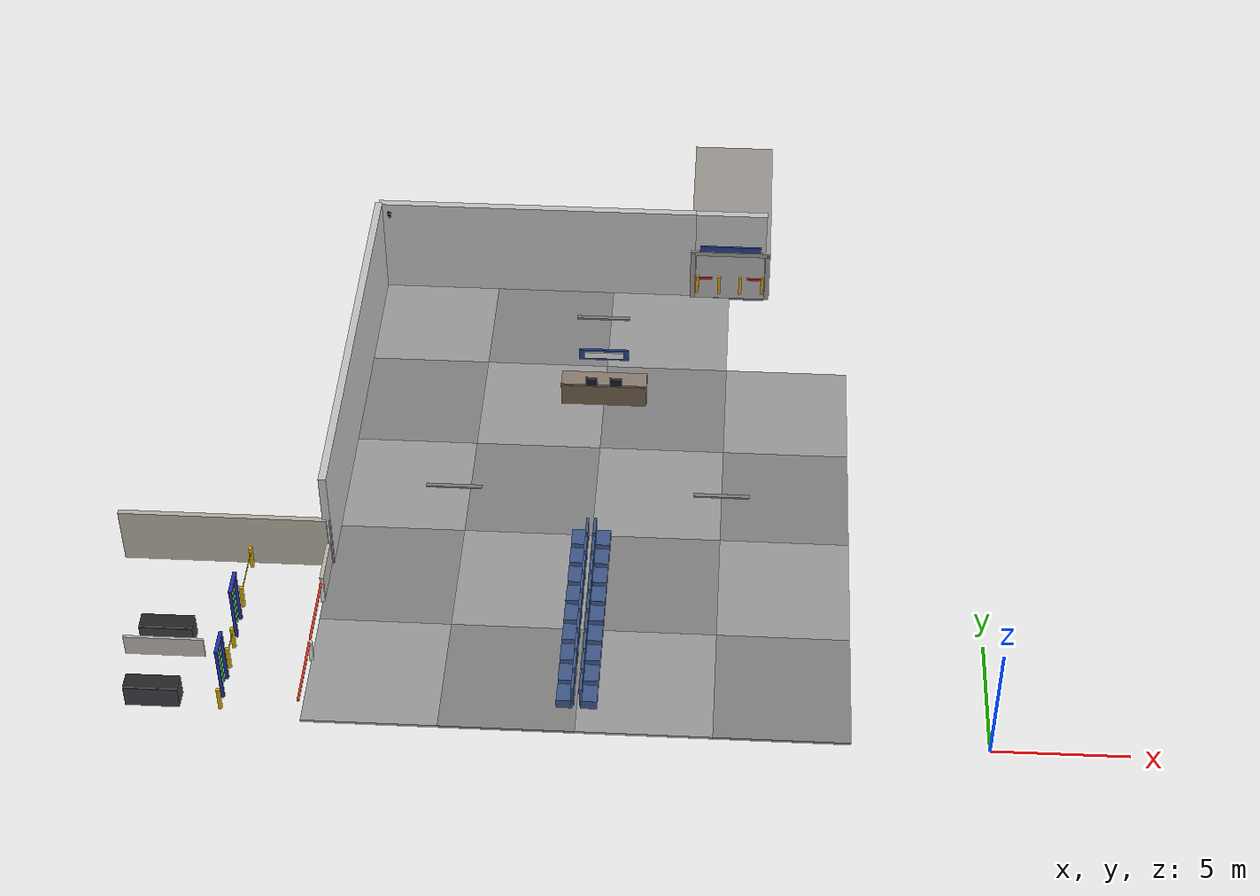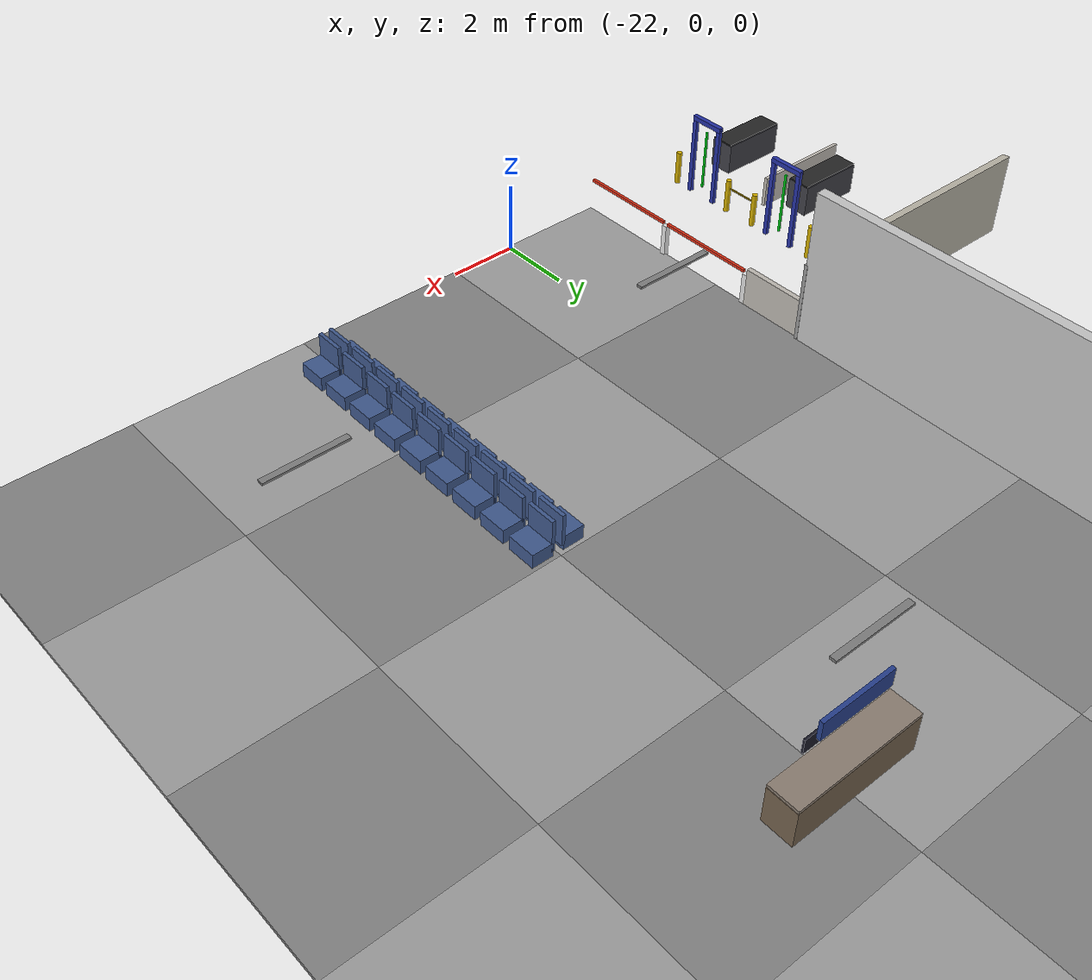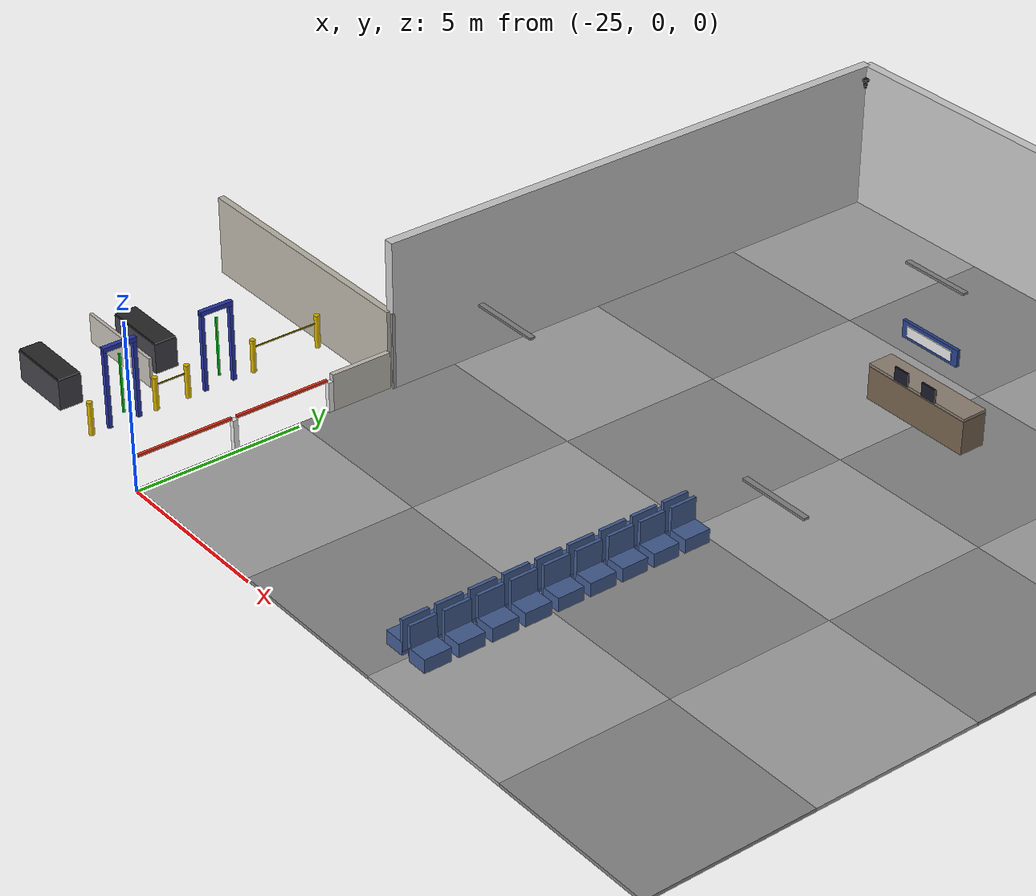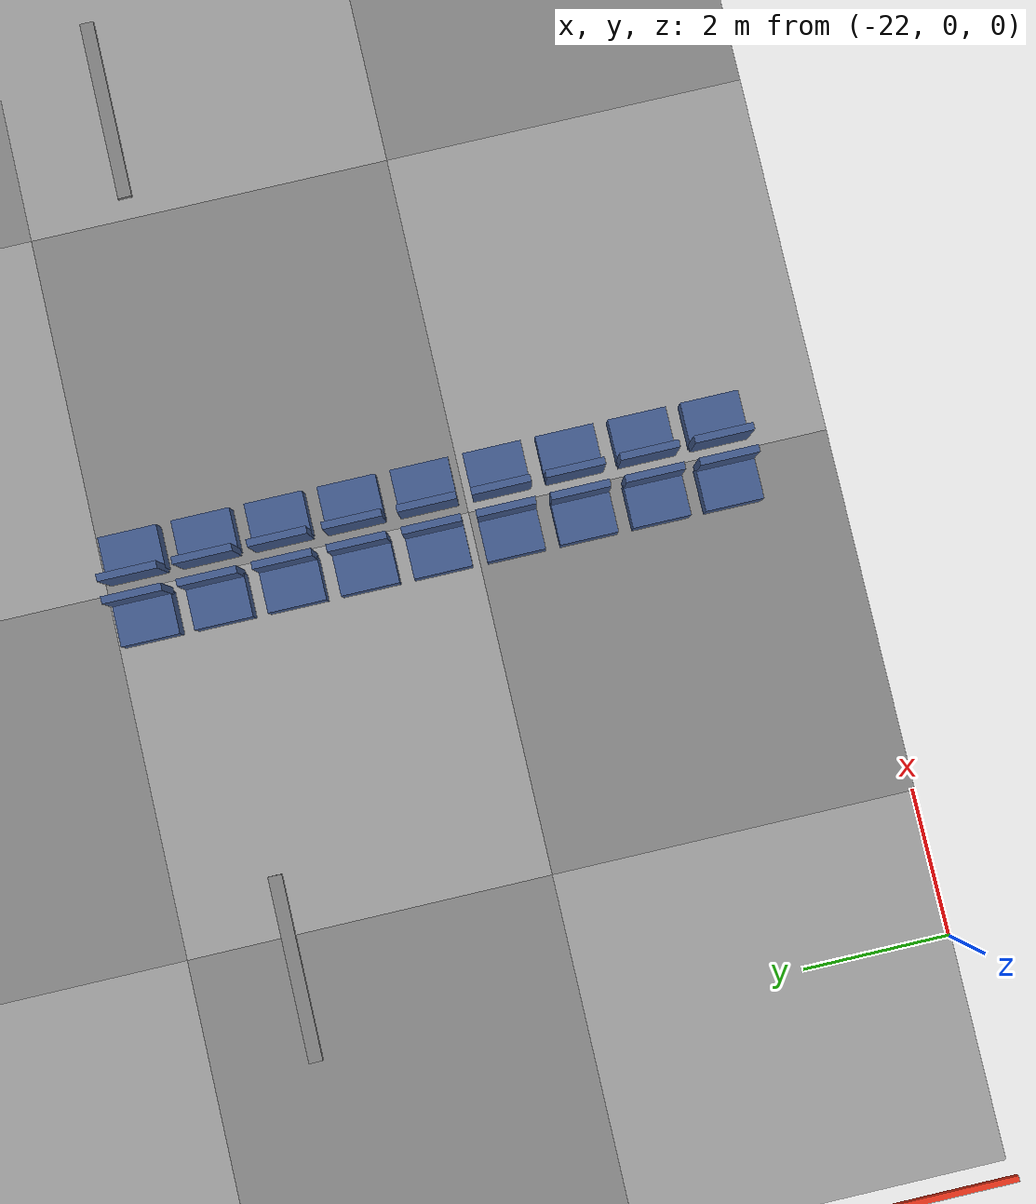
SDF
<sdf version="1.10">
 <world name="my_world">
  <model name="vtile_0_5">
   <static>true</static>
   <pose>-22.5 2.5 0.05 0 0 0</pose>
   <link name="link">
    <visual name="vis">
     <geometry><box><size>5 5 0.1</size></box></geometry>
     <material><ambient>0.62 0.62 0.62 1</ambient><diffuse>0.62 0.62 0.62 1</diffuse></material>
    </visual>
   </link>
  </model>
  <model name="vtile_0_6">
   <static>true</static>
   <pose>-22.5 7.5 0.05 0 0 0</pose>
   <link name="link">
    <visual name="vis">
     <geometry><box><size>5 5 0.1</size></box></geometry>
     <material><ambient>0.52 0.52 0.52 1</ambient><diffuse>0.52 0.52 0.52 1</diffuse></material>
    </visual>
   </link>
  </model>
  <model name="vtile_0_7">
   <static>true</static>
   <pose>-22.5 12.5 0.05 0 0 0</pose>
   <link name="link">
    <visual name="vis">
     <geometry><box><size>5 5 0.1</size></box></geometry>
     <material><ambient>0.62 0.62 0.62 1</ambient><diffuse>0.62 0.62 0.62 1</diffuse></material>
    </visual>
   </link>
  </model>
  <model name="vtile_0_8">
   <static>true</static>
   <pose>-22.5 17.5 0.05 0 0 0</pose>
   <link name="link">
    <visual name="vis">
     <geometry><box><size>5 5 0.1</size></box></geometry>
     <material><ambient>0.52 0.52 0.52 1</ambient><diffuse>0.52 0.52 0.52 1</diffuse></material>
    </visual>
   </link>
  </model>
  <model name="vtile_0_9">
   <static>true</static>
   <pose>-22.5 22.5 0.05 0 0 0</pose>
   <link name="link">
    <visual name="vis">
     <geometry><box><size>5 5 0.1</size></box></geometry>
     <material><ambient>0.62 0.62 0.62 1</ambient><diffuse>0.62 0.62 0.62 1</diffuse></material>
    </visual>
   </link>
  </model>
  <model name="vtile_1_5">
   <static>true</static>
   <pose>-17.5 2.5 0.05 0 0 0</pose>
   <link name="link">
    <visual name="vis">
     <geometry><box><size>5 5 0.1</size></box></geometry>
     <material><ambient>0.52 0.52 0.52 1</ambient><diffuse>0.52 0.52 0.52 1</diffuse></material>
    </visual>
   </link>
  </model>
  <model name="vtile_1_6">
   <static>true</static>
   <pose>-17.5 7.5 0.05 0 0 0</pose>
   <link name="link">
    <visual name="vis">
     <geometry><box><size>5 5 0.1</size></box></geometry>
     <material><ambient>0.62 0.62 0.62 1</ambient><diffuse>0.62 0.62 0.62 1</diffuse></material>
    </visual>
   </link>
  </model>
  <model name="vtile_1_7">
   <static>true</static>
   <pose>-17.5 12.5 0.05 0 0 0</pose>
   <link name="link">
    <visual name="vis">
     <geometry><box><size>5 5 0.1</size></box></geometry>
     <material><ambient>0.52 0.52 0.52 1</ambient><diffuse>0.52 0.52 0.52 1</diffuse></material>
    </visual>
   </link>
  </model>
  <model name="vtile_1_8">
   <static>true</static>
   <pose>-17.5 17.5 0.05 0 0 0</pose>
   <link name="link">
    <visual name="vis">
     <geometry><box><size>5 5 0.1</size></box></geometry>
     <material><ambient>0.62 0.62 0.62 1</ambient><diffuse>0.62 0.62 0.62 1</diffuse></material>
    </visual>
   </link>
  </model>
  <model name="vtile_1_9">
   <static>true</static>
   <pose>-17.5 22.5 0.05 0 0 0</pose>
   <link name="link">
    <visual name="vis">
     <geometry><box><size>5 5 0.1</size></box></geometry>
     <material><ambient>0.52 0.52 0.52 1</ambient><diffuse>0.52 0.52 0.52 1</diffuse></material>
    </visual>
   </link>
  </model>
  <model name="vtile_2_5">
   <static>true</static>
   <pose>-12.5 2.5 0.05 0 0 0</pose>
   <link name="link">
    <visual name="vis">
     <geometry><box><size>5 5 0.1</size></box></geometry>
     <material><ambient>0.62 0.62 0.62 1</ambient><diffuse>0.62 0.62 0.62 1</diffuse></material>
    </visual>
   </link>
  </model>
  <model name="vtile_2_6">
   <static>true</static>
   <pose>-12.5 7.5 0.05 0 0 0</pose>
   <link name="link">
    <visual name="vis">
     <geometry><box><size>5 5 0.1</size></box></geometry>
     <material><ambient>0.52 0.52 0.52 1</ambient><diffuse>0.52 0.52 0.52 1</diffuse></material>
    </visual>
   </link>
  </model>
  <model name="vtile_2_7">
   <static>true</static>
   <pose>-12.5 12.5 0.05 0 0 0</pose>
   <link name="link">
    <visual name="vis">
     <geometry><box><size>5 5 0.1</size></box></geometry>
     <material><ambient>0.62 0.62 0.62 1</ambient><diffuse>0.62 0.62 0.62 1</diffuse></material>
    </visual>
   </link>
  </model>
  <model name="vtile_2_8">
   <static>true</static>
   <pose>-12.5 17.5 0.05 0 0 0</pose>
   <link name="link">
    <visual name="vis">
     <geometry><box><size>5 5 0.1</size></box></geometry>
     <material><ambient>0.52 0.52 0.52 1</ambient><diffuse>0.52 0.52 0.52 1</diffuse></material>
    </visual>
   </link>
  </model>
  <model name="vtile_2_9">
   <static>true</static>
   <pose>-12.5 22.5 0.05 0 0 0</pose>
   <link name="link">
    <visual name="vis">
     <geometry><box><size>5 5 0.1</size></box></geometry>
     <material><ambient>0.62 0.62 0.62 1</ambient><diffuse>0.62 0.62 0.62 1</diffuse></material>
    </visual>
   </link>
  </model>
  <model name="vtile_3_5">
   <static>true</static>
   <pose>-7.5 2.5 0.05 0 0 0</pose>
   <link name="link">
    <visual name="vis">
     <geometry><box><size>5 5 0.1</size></box></geometry>
     <material><ambient>0.52 0.52 0.52 1</ambient><diffuse>0.52 0.52 0.52 1</diffuse></material>
    </visual>
   </link>
  </model>
  <model name="vtile_3_6">
   <static>true</static>
   <pose>-7.5 7.5 0.05 0 0 0</pose>
   <link name="link">
    <visual name="vis">
     <geometry><box><size>5 5 0.1</size></box></geometry>
     <material><ambient>0.62 0.62 0.62 1</ambient><diffuse>0.62 0.62 0.62 1</diffuse></material>
    </visual>
   </link>
  </model>
  <model name="vtile_3_7">
   <static>true</static>
   <pose>-7.5 12.5 0.05 0 0 0</pose>
   <link name="link">
    <visual name="vis">
     <geometry><box><size>5 5 0.1</size></box></geometry>
     <material><ambient>0.52 0.52 0.52 1</ambient><diffuse>0.52 0.52 0.52 1</diffuse></material>
    </visual>
   </link>
  </model>
  <model name="vtile_3_8">
   <static>true</static>
   <pose>-7.5 17.5 0.05 0 0 0</pose>
   <link name="link">
    <visual name="vis">
     <geometry><box><size>5 5 0.1</size></box></geometry>
     <material><ambient>0.62 0.62 0.62 1</ambient><diffuse>0.62 0.62 0.62 1</diffuse></material>
    </visual>
   </link>
  </model>
  <model name="wall_north_1">
   <static>true</static>
   <pose>-18.25 25 2.25 0 0 0</pose>
   <link name="link">
    <collision name="col"><geometry><box><size>13.5 0.3 4.5</size></box></geometry></collision>
    <visual name="vis">
     <geometry><box><size>13.5 0.3 4.5</size></box></geometry>
     <material><ambient>0.78 0.78 0.78 1</ambient><diffuse>0.78 0.78 0.78 1</diffuse></material>
    </visual>
   </link>
  </model>
  <model name="wall_north_top_-10">
   <static>true</static>
   <pose>-10 25 3.5 0 0 0</pose>
   <link name="link">
    <collision name="col"><geometry><box><size>3.0 0.3 2.0</size></box></geometry></collision>
    <visual name="vis">
     <geometry><box><size>3.0 0.3 2.0</size></box></geometry>
     <material><ambient>0.78 0.78 0.78 1</ambient><diffuse>0.78 0.78 0.78 1</diffuse></material>
    </visual>
   </link>
  </model>
  <model name="wall_west_n">
   <static>true</static>
   <pose>-25 16.5 2.25 0 0 0</pose>
   <link name="link">
    <collision name="col"><geometry><box><size>0.3 17 4.5</size></box></geometry></collision>
    <visual name="vis">
     <geometry><box><size>0.3 17 4.5</size></box></geometry>
     <material><ambient>0.78 0.78 0.78 1</ambient><diffuse>0.78 0.78 0.78 1</diffuse></material>
    </visual>
   </link>
  </model>
  <model name="entrance_frame_n">
   <static>true</static>
   <pose>-24.87 8 1.2 0 0 0</pose>
   <link name="link">
    <collision name="col"><geometry><box><size>0.06 0.1 2.4</size></box></geometry></collision>
    <visual name="vis">
     <geometry><box><size>0.06 0.1 2.4</size></box></geometry>
     <material><ambient>0.6 0.6 0.6 1</ambient><diffuse>0.6 0.6 0.6 1</diffuse></material>
    </visual>
   </link>
  </model>
  <model name="gate_a1_counter">
   <static>true</static>
   <pose>-15.0 18.0 0.5500 0 0 0</pose>
   <link name="link">
    <collision name="col"><geometry><box><size>3.5 0.8 1.1</size></box></geometry></collision>
    <visual name="vis">
     <geometry><box><size>3.5 0.8 1.1</size></box></geometry>
     <material><ambient>0.45 0.38 0.3 1</ambient><diffuse>0.45 0.38 0.3 1</diffuse></material>
    </visual>
   </link>
  </model>
  <model name="gate_a1_counter_top">
   <static>true</static>
   <pose>-15.0 18.0 1.1500 0 0 0</pose>
   <link name="link">
    <collision name="col"><geometry><box><size>3.5 0.8 0.08</size></box></geometry></collision>
    <visual name="vis">
     <geometry><box><size>3.5 0.8 0.08</size></box></geometry>
     <material><ambient>0.55 0.5 0.45 1</ambient><diffuse>0.55 0.5 0.45 1</diffuse></material>
    </visual>
   </link>
  </model>
  <model name="gate_a1_monitor">
   <static>true</static>
   <pose>-15.5 17.55 1.4000 0 0 0</pose>
   <link name="link">
    <visual name="vis">
     <geometry><box><size>0.5 0.05 0.4</size></box></geometry>
     <material><ambient>0.1 0.1 0.15 1</ambient><diffuse>0.1 0.1 0.15 1</diffuse></material>
    </visual>
   </link>
  </model>
  <model name="gate_a1_monitor2">
   <static>true</static>
   <pose>-14.5 17.55 1.4000 0 0 0</pose>
   <link name="link">
    <visual name="vis">
     <geometry><box><size>0.5 0.05 0.4</size></box></geometry>
     <material><ambient>0.1 0.1 0.15 1</ambient><diffuse>0.1 0.1 0.15 1</diffuse></material>
    </visual>
   </link>
  </model>
  <model name="gate_a1_sign">
   <static>true</static>
   <pose>-15.0 18.0 2.5000 0 0 0</pose>
   <link name="link">
    <visual name="vis">
     <geometry><box><size>2.0 0.1 0.5</size></box></geometry>
     <material><ambient>0.15 0.25 0.55 1</ambient><diffuse>0.15 0.25 0.55 1</diffuse></material>
    </visual>
   </link>
  </model>
  <model name="gate_a1_sign_text">
   <static>true</static>
   <pose>-15.0 17.94 2.5000 0 0 0</pose>
   <link name="link">
    <visual name="vis">
     <geometry><box><size>1.6 0.05 0.3</size></box></geometry>
     <material><ambient>0.9 0.9 0.9 1</ambient><diffuse>0.9 0.9 0.9 1</diffuse></material>
    </visual>
   </link>
  </model>
  <model name="lamp_c_n20_strip">
   <static>true</static>
   <pose>-20 8 4.42 0 0 0</pose>
   <link name="link">
    <visual name="strip">
     <geometry><box><size>2.0 0.12 0.04</size></box></geometry>
     <material>
      <ambient>0.95 0.95 0.88 1</ambient>
      <diffuse>0.95 0.95 0.88 1</diffuse>
      <emissive>0.35 0.35 0.30 1</emissive>
     </material>
    </visual>
    <visual name="housing">
     <pose>0 0 0.03 0 0 0</pose>
     <geometry><box><size>2.1 0.16 0.06</size></box></geometry>
     <material><ambient>0.5 0.5 0.5 1</ambient><diffuse>0.5 0.5 0.5 1</diffuse></material>
    </visual>
   </link>
  </model>
  <model name="lamp_c_n10_strip">
   <static>true</static>
   <pose>-10 8 4.42 0 0 0</pose>
   <link name="link">
    <visual name="strip">
     <geometry><box><size>2.0 0.12 0.04</size></box></geometry>
     <material>
      <ambient>0.95 0.95 0.88 1</ambient>
      <diffuse>0.95 0.95 0.88 1</diffuse>
      <emissive>0.35 0.35 0.30 1</emissive>
     </material>
    </visual>
    <visual name="housing">
     <pose>0 0 0.03 0 0 0</pose>
     <geometry><box><size>2.1 0.16 0.06</size></box></geometry>
     <material><ambient>0.5 0.5 0.5 1</ambient><diffuse>0.5 0.5 0.5 1</diffuse></material>
    </visual>
   </link>
  </model>
  <model name="lamp_gate_a1_strip">
   <static>true</static>
   <pose>-15 18.0 4.42 0 0 0</pose>
   <link name="link">
    <visual name="strip">
     <geometry><box><size>2.0 0.12 0.04</size></box></geometry>
     <material>
      <ambient>0.95 0.95 0.88 1</ambient>
      <diffuse>0.95 0.95 0.88 1</diffuse>
      <emissive>0.35 0.35 0.30 1</emissive>
     </material>
    </visual>
    <visual name="housing">
     <pose>0 0 0.03 0 0 0</pose>
     <geometry><box><size>2.1 0.16 0.06</size></box></geometry>
     <material><ambient>0.5 0.5 0.5 1</ambient><diffuse>0.5 0.5 0.5 1</diffuse></material>
    </visual>
   </link>
  </model>
  <model name="camera_nw_mount">
   <static>true</static>
   <pose>-24.5 24.5 4.3 0 0 0</pose>
   <link name="link">
    <visual name="vis">
     <geometry><box><size>0.15 0.15 0.08</size></box></geometry>
     <material><ambient>0.1 0.1 0.1 1</ambient><diffuse>0.1 0.1 0.1 1</diffuse></material>
    </visual>
   </link>
  </model>
  <model name="camera_nw_body">
   <static>true</static>
   <pose>-24.5 24.5 4.15 0 1.9199 -0.7854</pose>
   <link name="link">
    <visual name="vis">
     <geometry><cylinder><radius>0.05</radius><length>0.16</length></cylinder></geometry>
     <material><ambient>0.12 0.12 0.12 1</ambient><diffuse>0.12 0.12 0.12 1</diffuse></material>
    </visual>
    <sensor name="camera_nw" type="camera">
     <pose>0 0 0 0 -1.5708 0</pose>
     <topic>/surveillance/nw</topic>
     <update_rate>10</update_rate>
     <camera>
      <horizontal_fov>1.9199</horizontal_fov>
      <image><width>1280</width><height>720</height></image>
      <clip><near>0.1</near><far>70.0</far></clip>
     </camera>
     <always_on>true</always_on>
     <visualize>false</visualize>
    </sensor>
   </link>
  </model>
  <model name="tunnel_a1_wall_l">
   <static>true</static>
   <pose>-11.6 28.5 1.3 0 0 0</pose>
   <link name="link">
    <collision name="col"><geometry><box><size>0.2 7.5 2.4</size></box></geometry></collision>
    <visual name="vis">
     <geometry><box><size>0.2 7.5 2.4</size></box></geometry>
     <material><ambient>0.62 0.60 0.58 1</ambient><diffuse>0.62 0.60 0.58 1</diffuse></material>
    </visual>
   </link>
  </model>
  <model name="tunnel_a1_wall_r">
   <static>true</static>
   <pose>-8.4 28.5 1.3 0 0 0</pose>
   <link name="link">
    <collision name="col"><geometry><box><size>0.2 7.5 2.4</size></box></geometry></collision>
    <visual name="vis">
     <geometry><box><size>0.2 7.5 2.4</size></box></geometry>
     <material><ambient>0.62 0.60 0.58 1</ambient><diffuse>0.62 0.60 0.58 1</diffuse></material>
    </visual>
   </link>
  </model>
  <model name="tunnel_a1_roof">
   <static>true</static>
   <pose>-10 28.5 2.5 0 0 0</pose>
   <link name="link">
    <collision name="col"><geometry><box><size>3.4 7.5 0.2</size></box></geometry></collision>
    <visual name="vis">
     <geometry><box><size>3.4 7.5 0.2</size></box></geometry>
     <material><ambient>0.62 0.60 0.58 1</ambient><diffuse>0.62 0.60 0.58 1</diffuse></material>
    </visual>
   </link>
  </model>
  <model name="tunnel_a1_floor">
   <static>true</static>
   <pose>-10 28.5 0.06 0 0 0</pose>
   <link name="link">
    <collision name="col"><geometry><box><size>3.0 7.5 0.1</size></box></geometry></collision>
    <visual name="vis">
     <geometry><box><size>3.0 7.5 0.1</size></box></geometry>
     <material><ambient>0.48 0.48 0.48 1</ambient><diffuse>0.48 0.48 0.48 1</diffuse></material>
    </visual>
   </link>
  </model>
  <model name="tunnel_a1_sign">
   <static>true</static>
   <pose>-10 24.8 2.7 0 0 0</pose>
   <link name="link">
    <visual name="vis">
     <geometry><box><size>2.6 0.08 0.35</size></box></geometry>
     <material><ambient>0.15 0.25 0.55 1</ambient><diffuse>0.15 0.25 0.55 1</diffuse></material>
    </visual>
   </link>
  </model>
  <model name="cluster_5_a_1">
   <static>true</static>
   <pose>-15.45 1.50 0.25 0 0 0</pose>
   <link name="link">
    <collision name="col"><geometry><box><size>0.6 0.8 0.5</size></box></geometry></collision>
    <visual name="vis">
     <geometry><box><size>0.6 0.8 0.5</size></box></geometry>
     <material><ambient>0.25 0.35 0.55 1</ambient><diffuse>0.25 0.35 0.55 1</diffuse></material>
    </visual>
   </link>
  </model>
  <model name="cluster_5_a_1_back">
   <static>true</static>
   <pose>-15.15 1.50 0.7 0 0 0</pose>
   <link name="link">
    <collision name="col"><geometry><box><size>0.1 0.8 0.9</size></box></geometry></collision>
    <visual name="vis">
     <geometry><box><size>0.1 0.8 0.9</size></box></geometry>
     <material><ambient>0.25 0.35 0.55 1</ambient><diffuse>0.25 0.35 0.55 1</diffuse></material>
    </visual>
   </link>
  </model>
  <model name="cluster_5_b_1">
   <static>true</static>
   <pose>-14.55 1.50 0.25 0 0 0</pose>
   <link name="link">
    <collision name="col"><geometry><box><size>0.6 0.8 0.5</size></box></geometry></collision>
    <visual name="vis">
     <geometry><box><size>0.6 0.8 0.5</size></box></geometry>
     <material><ambient>0.25 0.35 0.55 1</ambient><diffuse>0.25 0.35 0.55 1</diffuse></material>
    </visual>
   </link>
  </model>
  <model name="cluster_5_b_1_back">
   <static>true</static>
   <pose>-14.85 1.50 0.7 0 0 0</pose>
   <link name="link">
    <collision name="col"><geometry><box><size>0.1 0.8 0.9</size></box></geometry></collision>
    <visual name="vis">
     <geometry><box><size>0.1 0.8 0.9</size></box></geometry>
     <material><ambient>0.25 0.35 0.55 1</ambient><diffuse>0.25 0.35 0.55 1</diffuse></material>
    </visual>
   </link>
  </model>
  <model name="cluster_5_a_2">
   <static>true</static>
   <pose>-15.45 2.50 0.25 0 0 0</pose>
   <link name="link">
    <collision name="col"><geometry><box><size>0.6 0.8 0.5</size></box></geometry></collision>
    <visual name="vis">
     <geometry><box><size>0.6 0.8 0.5</size></box></geometry>
     <material><ambient>0.25 0.35 0.55 1</ambient><diffuse>0.25 0.35 0.55 1</diffuse></material>
    </visual>
   </link>
  </model>
  <model name="cluster_5_a_2_back">
   <static>true</static>
   <pose>-15.15 2.50 0.7 0 0 0</pose>
   <link name="link">
    <collision name="col"><geometry><box><size>0.1 0.8 0.9</size></box></geometry></collision>
    <visual name="vis">
     <geometry><box><size>0.1 0.8 0.9</size></box></geometry>
     <material><ambient>0.25 0.35 0.55 1</ambient><diffuse>0.25 0.35 0.55 1</diffuse></material>
    </visual>
   </link>
  </model>
  <model name="cluster_5_b_2">
   <static>true</static>
   <pose>-14.55 2.50 0.25 0 0 0</pose>
   <link name="link">
    <collision name="col"><geometry><box><size>0.6 0.8 0.5</size></box></geometry></collision>
    <visual name="vis">
     <geometry><box><size>0.6 0.8 0.5</size></box></geometry>
     <material><ambient>0.25 0.35 0.55 1</ambient><diffuse>0.25 0.35 0.55 1</diffuse></material>
    </visual>
   </link>
  </model>
  <model name="cluster_5_b_2_back">
   <static>true</static>
   <pose>-14.85 2.50 0.7 0 0 0</pose>
   <link name="link">
    <collision name="col"><geometry><box><size>0.1 0.8 0.9</size></box></geometry></collision>
    <visual name="vis">
     <geometry><box><size>0.1 0.8 0.9</size></box></geometry>
     <material><ambient>0.25 0.35 0.55 1</ambient><diffuse>0.25 0.35 0.55 1</diffuse></material>
    </visual>
   </link>
  </model>
  <model name="cluster_5_a_3">
   <static>true</static>
   <pose>-15.45 3.50 0.25 0 0 0</pose>
   <link name="link">
    <collision name="col"><geometry><box><size>0.6 0.8 0.5</size></box></geometry></collision>
    <visual name="vis">
     <geometry><box><size>0.6 0.8 0.5</size></box></geometry>
     <material><ambient>0.25 0.35 0.55 1</ambient><diffuse>0.25 0.35 0.55 1</diffuse></material>
    </visual>
   </link>
  </model>
  <model name="cluster_5_a_3_back">
   <static>true</static>
   <pose>-15.15 3.50 0.7 0 0 0</pose>
   <link name="link">
    <collision name="col"><geometry><box><size>0.1 0.8 0.9</size></box></geometry></collision>
    <visual name="vis">
     <geometry><box><size>0.1 0.8 0.9</size></box></geometry>
     <material><ambient>0.25 0.35 0.55 1</ambient><diffuse>0.25 0.35 0.55 1</diffuse></material>
    </visual>
   </link>
  </model>
  <model name="cluster_5_b_3">
   <static>true</static>
   <pose>-14.55 3.50 0.25 0 0 0</pose>
   <link name="link">
    <collision name="col"><geometry><box><size>0.6 0.8 0.5</size></box></geometry></collision>
    <visual name="vis">
     <geometry><box><size>0.6 0.8 0.5</size></box></geometry>
     <material><ambient>0.25 0.35 0.55 1</ambient><diffuse>0.25 0.35 0.55 1</diffuse></material>
    </visual>
   </link>
  </model>
  <model name="cluster_5_b_3_back">
   <static>true</static>
   <pose>-14.85 3.50 0.7 0 0 0</pose>
   <link name="link">
    <collision name="col"><geometry><box><size>0.1 0.8 0.9</size></box></geometry></collision>
    <visual name="vis">
     <geometry><box><size>0.1 0.8 0.9</size></box></geometry>
     <material><ambient>0.25 0.35 0.55 1</ambient><diffuse>0.25 0.35 0.55 1</diffuse></material>
    </visual>
   </link>
  </model>
  <model name="cluster_5_a_4">
   <static>true</static>
   <pose>-15.45 4.50 0.25 0 0 0</pose>
   <link name="link">
    <collision name="col"><geometry><box><size>0.6 0.8 0.5</size></box></geometry></collision>
    <visual name="vis">
     <geometry><box><size>0.6 0.8 0.5</size></box></geometry>
     <material><ambient>0.25 0.35 0.55 1</ambient><diffuse>0.25 0.35 0.55 1</diffuse></material>
    </visual>
   </link>
  </model>
  <model name="cluster_5_a_4_back">
   <static>true</static>
   <pose>-15.15 4.50 0.7 0 0 0</pose>
   <link name="link">
    <collision name="col"><geometry><box><size>0.1 0.8 0.9</size></box></geometry></collision>
    <visual name="vis">
     <geometry><box><size>0.1 0.8 0.9</size></box></geometry>
     <material><ambient>0.25 0.35 0.55 1</ambient><diffuse>0.25 0.35 0.55 1</diffuse></material>
    </visual>
   </link>
  </model>
  <model name="cluster_5_b_4">
   <static>true</static>
   <pose>-14.55 4.50 0.25 0 0 0</pose>
   <link name="link">
    <collision name="col"><geometry><box><size>0.6 0.8 0.5</size></box></geometry></collision>
    <visual name="vis">
     <geometry><box><size>0.6 0.8 0.5</size></box></geometry>
     <material><ambient>0.25 0.35 0.55 1</ambient><diffuse>0.25 0.35 0.55 1</diffuse></material>
    </visual>
   </link>
  </model>
  <model name="cluster_5_b_4_back">
   <static>true</static>
   <pose>-14.85 4.50 0.7 0 0 0</pose>
   <link name="link">
    <collision name="col"><geometry><box><size>0.1 0.8 0.9</size></box></geometry></collision>
    <visual name="vis">
     <geometry><box><size>0.1 0.8 0.9</size></box></geometry>
     <material><ambient>0.25 0.35 0.55 1</ambient><diffuse>0.25 0.35 0.55 1</diffuse></material>
    </visual>
   </link>
  </model>
  <model name="cluster_5_a_5">
   <static>true</static>
   <pose>-15.45 5.50 0.25 0 0 0</pose>
   <link name="link">
    <collision name="col"><geometry><box><size>0.6 0.8 0.5</size></box></geometry></collision>
    <visual name="vis">
     <geometry><box><size>0.6 0.8 0.5</size></box></geometry>
     <material><ambient>0.25 0.35 0.55 1</ambient><diffuse>0.25 0.35 0.55 1</diffuse></material>
    </visual>
   </link>
  </model>
  <model name="cluster_5_a_5_back">
   <static>true</static>
   <pose>-15.15 5.50 0.7 0 0 0</pose>
   <link name="link">
    <collision name="col"><geometry><box><size>0.1 0.8 0.9</size></box></geometry></collision>
    <visual name="vis">
     <geometry><box><size>0.1 0.8 0.9</size></box></geometry>
     <material><ambient>0.25 0.35 0.55 1</ambient><diffuse>0.25 0.35 0.55 1</diffuse></material>
    </visual>
   </link>
  </model>
  <model name="cluster_5_b_5">
   <static>true</static>
   <pose>-14.55 5.50 0.25 0 0 0</pose>
   <link name="link">
    <collision name="col"><geometry><box><size>0.6 0.8 0.5</size></box></geometry></collision>
    <visual name="vis">
     <geometry><box><size>0.6 0.8 0.5</size></box></geometry>
     <material><ambient>0.25 0.35 0.55 1</ambient><diffuse>0.25 0.35 0.55 1</diffuse></material>
    </visual>
   </link>
  </model>
  <model name="cluster_5_b_5_back">
   <static>true</static>
   <pose>-14.85 5.50 0.7 0 0 0</pose>
   <link name="link">
    <collision name="col"><geometry><box><size>0.1 0.8 0.9</size></box></geometry></collision>
    <visual name="vis">
     <geometry><box><size>0.1 0.8 0.9</size></box></geometry>
     <material><ambient>0.25 0.35 0.55 1</ambient><diffuse>0.25 0.35 0.55 1</diffuse></material>
    </visual>
   </link>
  </model>
  <model name="cluster_5_a_6">
   <static>true</static>
   <pose>-15.45 6.50 0.25 0 0 0</pose>
   <link name="link">
    <collision name="col"><geometry><box><size>0.6 0.8 0.5</size></box></geometry></collision>
    <visual name="vis">
     <geometry><box><size>0.6 0.8 0.5</size></box></geometry>
     <material><ambient>0.25 0.35 0.55 1</ambient><diffuse>0.25 0.35 0.55 1</diffuse></material>
    </visual>
   </link>
  </model>
  <model name="cluster_5_a_6_back">
   <static>true</static>
   <pose>-15.15 6.50 0.7 0 0 0</pose>
   <link name="link">
    <collision name="col"><geometry><box><size>0.1 0.8 0.9</size></box></geometry></collision>
    <visual name="vis">
     <geometry><box><size>0.1 0.8 0.9</size></box></geometry>
     <material><ambient>0.25 0.35 0.55 1</ambient><diffuse>0.25 0.35 0.55 1</diffuse></material>
    </visual>
   </link>
  </model>
  <model name="cluster_5_b_6">
   <static>true</static>
   <pose>-14.55 6.50 0.25 0 0 0</pose>
   <link name="link">
    <collision name="col"><geometry><box><size>0.6 0.8 0.5</size></box></geometry></collision>
    <visual name="vis">
     <geometry><box><size>0.6 0.8 0.5</size></box></geometry>
     <material><ambient>0.25 0.35 0.55 1</ambient><diffuse>0.25 0.35 0.55 1</diffuse></material>
    </visual>
   </link>
  </model>
  <model name="cluster_5_b_6_back">
   <static>true</static>
   <pose>-14.85 6.50 0.7 0 0 0</pose>
   <link name="link">
    <collision name="col"><geometry><box><size>0.1 0.8 0.9</size></box></geometry></collision>
    <visual name="vis">
     <geometry><box><size>0.1 0.8 0.9</size></box></geometry>
     <material><ambient>0.25 0.35 0.55 1</ambient><diffuse>0.25 0.35 0.55 1</diffuse></material>
    </visual>
   </link>
  </model>
  <model name="cluster_5_a_7">
   <static>true</static>
   <pose>-15.45 7.50 0.25 0 0 0</pose>
   <link name="link">
    <collision name="col"><geometry><box><size>0.6 0.8 0.5</size></box></geometry></collision>
    <visual name="vis">
     <geometry><box><size>0.6 0.8 0.5</size></box></geometry>
     <material><ambient>0.25 0.35 0.55 1</ambient><diffuse>0.25 0.35 0.55 1</diffuse></material>
    </visual>
   </link>
  </model>
  <model name="cluster_5_a_7_back">
   <static>true</static>
   <pose>-15.15 7.50 0.7 0 0 0</pose>
   <link name="link">
    <collision name="col"><geometry><box><size>0.1 0.8 0.9</size></box></geometry></collision>
    <visual name="vis">
     <geometry><box><size>0.1 0.8 0.9</size></box></geometry>
     <material><ambient>0.25 0.35 0.55 1</ambient><diffuse>0.25 0.35 0.55 1</diffuse></material>
    </visual>
   </link>
  </model>
  <model name="cluster_5_b_7">
   <static>true</static>
   <pose>-14.55 7.50 0.25 0 0 0</pose>
   <link name="link">
    <collision name="col"><geometry><box><size>0.6 0.8 0.5</size></box></geometry></collision>
    <visual name="vis">
     <geometry><box><size>0.6 0.8 0.5</size></box></geometry>
     <material><ambient>0.25 0.35 0.55 1</ambient><diffuse>0.25 0.35 0.55 1</diffuse></material>
    </visual>
   </link>
  </model>
  <model name="cluster_5_b_7_back">
   <static>true</static>
   <pose>-14.85 7.50 0.7 0 0 0</pose>
   <link name="link">
    <collision name="col"><geometry><box><size>0.1 0.8 0.9</size></box></geometry></collision>
    <visual name="vis">
     <geometry><box><size>0.1 0.8 0.9</size></box></geometry>
     <material><ambient>0.25 0.35 0.55 1</ambient><diffuse>0.25 0.35 0.55 1</diffuse></material>
    </visual>
   </link>
  </model>
  <model name="cluster_5_a_8">
   <static>true</static>
   <pose>-15.45 8.50 0.25 0 0 0</pose>
   <link name="link">
    <collision name="col"><geometry><box><size>0.6 0.8 0.5</size></box></geometry></collision>
    <visual name="vis">
     <geometry><box><size>0.6 0.8 0.5</size></box></geometry>
     <material><ambient>0.25 0.35 0.55 1</ambient><diffuse>0.25 0.35 0.55 1</diffuse></material>
    </visual>
   </link>
  </model>
  <model name="cluster_5_a_8_back">
   <static>true</static>
   <pose>-15.15 8.50 0.7 0 0 0</pose>
   <link name="link">
    <collision name="col"><geometry><box><size>0.1 0.8 0.9</size></box></geometry></collision>
    <visual name="vis">
     <geometry><box><size>0.1 0.8 0.9</size></box></geometry>
     <material><ambient>0.25 0.35 0.55 1</ambient><diffuse>0.25 0.35 0.55 1</diffuse></material>
    </visual>
   </link>
  </model>
  <model name="cluster_5_b_8">
   <static>true</static>
   <pose>-14.55 8.50 0.25 0 0 0</pose>
   <link name="link">
    <collision name="col"><geometry><box><size>0.6 0.8 0.5</size></box></geometry></collision>
    <visual name="vis">
     <geometry><box><size>0.6 0.8 0.5</size></box></geometry>
     <material><ambient>0.25 0.35 0.55 1</ambient><diffuse>0.25 0.35 0.55 1</diffuse></material>
    </visual>
   </link>
  </model>
  <model name="cluster_5_b_8_back">
   <static>true</static>
   <pose>-14.85 8.50 0.7 0 0 0</pose>
   <link name="link">
    <collision name="col"><geometry><box><size>0.1 0.8 0.9</size></box></geometry></collision>
    <visual name="vis">
     <geometry><box><size>0.1 0.8 0.9</size></box></geometry>
     <material><ambient>0.25 0.35 0.55 1</ambient><diffuse>0.25 0.35 0.55 1</diffuse></material>
    </visual>
   </link>
  </model>
  <model name="cluster_5_a_9">
   <static>true</static>
   <pose>-15.45 9.50 0.25 0 0 0</pose>
   <link name="link">
    <collision name="col"><geometry><box><size>0.6 0.8 0.5</size></box></geometry></collision>
    <visual name="vis">
     <geometry><box><size>0.6 0.8 0.5</size></box></geometry>
     <material><ambient>0.25 0.35 0.55 1</ambient><diffuse>0.25 0.35 0.55 1</diffuse></material>
    </visual>
   </link>
  </model>
  <model name="cluster_5_a_9_back">
   <static>true</static>
   <pose>-15.15 9.50 0.7 0 0 0</pose>
   <link name="link">
    <collision name="col"><geometry><box><size>0.1 0.8 0.9</size></box></geometry></collision>
    <visual name="vis">
     <geometry><box><size>0.1 0.8 0.9</size></box></geometry>
     <material><ambient>0.25 0.35 0.55 1</ambient><diffuse>0.25 0.35 0.55 1</diffuse></material>
    </visual>
   </link>
  </model>
  <model name="cluster_5_b_9">
   <static>true</static>
   <pose>-14.55 9.50 0.25 0 0 0</pose>
   <link name="link">
    <collision name="col"><geometry><box><size>0.6 0.8 0.5</size></box></geometry></collision>
    <visual name="vis">
     <geometry><box><size>0.6 0.8 0.5</size></box></geometry>
     <material><ambient>0.25 0.35 0.55 1</ambient><diffuse>0.25 0.35 0.55 1</diffuse></material>
    </visual>
   </link>
  </model>
  <model name="cluster_5_b_9_back">
   <static>true</static>
   <pose>-14.85 9.50 0.7 0 0 0</pose>
   <link name="link">
    <collision name="col"><geometry><box><size>0.1 0.8 0.9</size></box></geometry></collision>
    <visual name="vis">
     <geometry><box><size>0.1 0.8 0.9</size></box></geometry>
     <material><ambient>0.25 0.35 0.55 1</ambient><diffuse>0.25 0.35 0.55 1</diffuse></material>
    </visual>
   </link>
  </model>
  <model name="barrier_a1_post_l">
   <static>true</static>
   <pose>-11.4 25.1 0.5 0 0 0</pose>
   <link name="link">
    <collision name="col"><geometry><box><size>0.12 0.12 1.0</size></box></geometry></collision>
    <visual name="vis">
     <geometry><box><size>0.12 0.12 1.0</size></box></geometry>
     <material><ambient>0.85 0.65 0.05 1</ambient><diffuse>0.85 0.65 0.05 1</diffuse></material>
    </visual>
   </link>
  </model>
  <model name="barrier_a1_arm_l">
   <static>true</static>
   <pose>-11.05 25.1 0.9 0 0 0</pose>
   <link name="link">
    <collision name="col"><geometry><box><size>0.6 0.08 0.08</size></box></geometry></collision>
    <visual name="vis">
     <geometry><box><size>0.6 0.08 0.08</size></box></geometry>
     <material><ambient>0.85 0.15 0.1 1</ambient><diffuse>0.85 0.15 0.1 1</diffuse></material>
    </visual>
   </link>
  </model>
  <model name="barrier_a1_post_ml">
   <static>true</static>
   <pose>-10.45 25.1 0.5 0 0 0</pose>
   <link name="link">
    <collision name="col"><geometry><box><size>0.12 0.12 1.0</size></box></geometry></collision>
    <visual name="vis">
     <geometry><box><size>0.12 0.12 1.0</size></box></geometry>
     <material><ambient>0.85 0.65 0.05 1</ambient><diffuse>0.85 0.65 0.05 1</diffuse></material>
    </visual>
   </link>
  </model>
  <model name="barrier_a1_post_mr">
   <static>true</static>
   <pose>-9.55 25.1 0.5 0 0 0</pose>
   <link name="link">
    <collision name="col"><geometry><box><size>0.12 0.12 1.0</size></box></geometry></collision>
    <visual name="vis">
     <geometry><box><size>0.12 0.12 1.0</size></box></geometry>
     <material><ambient>0.85 0.65 0.05 1</ambient><diffuse>0.85 0.65 0.05 1</diffuse></material>
    </visual>
   </link>
  </model>
  <model name="barrier_a1_arm_r">
   <static>true</static>
   <pose>-8.95 25.1 0.9 0 0 0</pose>
   <link name="link">
    <collision name="col"><geometry><box><size>0.6 0.08 0.08</size></box></geometry></collision>
    <visual name="vis">
     <geometry><box><size>0.6 0.08 0.08</size></box></geometry>
     <material><ambient>0.85 0.15 0.1 1</ambient><diffuse>0.85 0.15 0.1 1</diffuse></material>
    </visual>
   </link>
  </model>
  <model name="barrier_a1_post_r">
   <static>true</static>
   <pose>-8.6 25.1 0.5 0 0 0</pose>
   <link name="link">
    <collision name="col"><geometry><box><size>0.12 0.12 1.0</size></box></geometry></collision>
    <visual name="vis">
     <geometry><box><size>0.12 0.12 1.0</size></box></geometry>
     <material><ambient>0.85 0.65 0.05 1</ambient><diffuse>0.85 0.65 0.05 1</diffuse></material>
    </visual>
   </link>
  </model>
  <model name="barrier_a1_fill_l">
   <static>true</static>
   <pose>-11.5 25.1 0.5 0 0 0</pose>
   <link name="link">
    <collision name="col"><geometry><box><size>0.08 0.12 1.0</size></box></geometry></collision>
    <visual name="vis">
     <geometry><box><size>0.08 0.12 1.0</size></box></geometry>
     <material><ambient>0.6 0.6 0.6 1</ambient><diffuse>0.6 0.6 0.6 1</diffuse></material>
    </visual>
   </link>
  </model>
  <model name="barrier_a1_fill_r">
   <static>true</static>
   <pose>-8.5 25.1 0.5 0 0 0</pose>
   <link name="link">
    <collision name="col"><geometry><box><size>0.08 0.12 1.0</size></box></geometry></collision>
    <visual name="vis">
     <geometry><box><size>0.08 0.12 1.0</size></box></geometry>
     <material><ambient>0.6 0.6 0.6 1</ambient><diffuse>0.6 0.6 0.6 1</diffuse></material>
    </visual>
   </link>
  </model>
  <model name="sec_outer_wall_n">
   <static>true</static>
   <pose>-29.0 8.0 1.2 0 0 0</pose>
   <link name="link">
    <collision name="col"><geometry><box><size>8.0 0.2 2.4</size></box></geometry></collision>
    <visual name="vis">
     <geometry><box><size>8.0 0.2 2.4</size></box></geometry>
     <material><ambient>0.72 0.70 0.65 1</ambient><diffuse>0.72 0.70 0.65 1</diffuse></material>
    </visual>
   </link>
  </model>
  <model name="sec_xray_3_l">
   <static>true</static>
   <pose>-28.0 1.95 1.2 0 0 0</pose>
   <link name="link">
    <collision name="col"><geometry><box><size>0.12 0.12 2.4</size></box></geometry></collision>
    <visual name="vis">
     <geometry><box><size>0.12 0.12 2.4</size></box></geometry>
     <material><ambient>0.15 0.20 0.65 1</ambient><diffuse>0.15 0.20 0.65 1</diffuse></material>
    </visual>
   </link>
  </model>
  <model name="sec_xray_3_r">
   <static>true</static>
   <pose>-28.0 1.05 1.2 0 0 0</pose>
   <link name="link">
    <collision name="col"><geometry><box><size>0.12 0.12 2.4</size></box></geometry></collision>
    <visual name="vis">
     <geometry><box><size>0.12 0.12 2.4</size></box></geometry>
     <material><ambient>0.15 0.20 0.65 1</ambient><diffuse>0.15 0.20 0.65 1</diffuse></material>
    </visual>
   </link>
  </model>
  <model name="sec_xray_3_top">
   <static>true</static>
   <pose>-28.0 1.5 2.38 0 0 0</pose>
   <link name="link">
    <visual name="vis">
     <geometry><box><size>0.14 1.02 0.14</size></box></geometry>
     <material><ambient>0.15 0.20 0.65 1</ambient><diffuse>0.15 0.20 0.65 1</diffuse></material>
    </visual>
   </link>
  </model>
  <model name="sec_xray_3_led">
   <static>true</static>
   <pose>-28.0 1.5 1.2 0 0 0</pose>
   <link name="link">
    <visual name="vis">
     <geometry><box><size>0.05 0.06 1.8</size></box></geometry>
     <material>
      <ambient>0.0 0.85 0.1 1</ambient>
      <diffuse>0.0 0.85 0.1 1</diffuse>
      <emissive>0.0 0.45 0.05 1</emissive>
     </material>
    </visual>
   </link>
  </model>
  <model name="sec_xray_4_l">
   <static>true</static>
   <pose>-28.0 4.95 1.2 0 0 0</pose>
   <link name="link">
    <collision name="col"><geometry><box><size>0.12 0.12 2.4</size></box></geometry></collision>
    <visual name="vis">
     <geometry><box><size>0.12 0.12 2.4</size></box></geometry>
     <material><ambient>0.15 0.20 0.65 1</ambient><diffuse>0.15 0.20 0.65 1</diffuse></material>
    </visual>
   </link>
  </model>
  <model name="sec_xray_4_r">
   <static>true</static>
   <pose>-28.0 4.05 1.2 0 0 0</pose>
   <link name="link">
    <collision name="col"><geometry><box><size>0.12 0.12 2.4</size></box></geometry></collision>
    <visual name="vis">
     <geometry><box><size>0.12 0.12 2.4</size></box></geometry>
     <material><ambient>0.15 0.20 0.65 1</ambient><diffuse>0.15 0.20 0.65 1</diffuse></material>
    </visual>
   </link>
  </model>
  <model name="sec_xray_4_top">
   <static>true</static>
   <pose>-28.0 4.5 2.38 0 0 0</pose>
   <link name="link">
    <visual name="vis">
     <geometry><box><size>0.14 1.02 0.14</size></box></geometry>
     <material><ambient>0.15 0.20 0.65 1</ambient><diffuse>0.15 0.20 0.65 1</diffuse></material>
    </visual>
   </link>
  </model>
  <model name="sec_xray_4_led">
   <static>true</static>
   <pose>-28.0 4.5 1.2 0 0 0</pose>
   <link name="link">
    <visual name="vis">
     <geometry><box><size>0.05 0.06 1.8</size></box></geometry>
     <material>
      <ambient>0.0 0.85 0.1 1</ambient>
      <diffuse>0.0 0.85 0.1 1</diffuse>
      <emissive>0.0 0.45 0.05 1</emissive>
     </material>
    </visual>
   </link>
  </model>
  <model name="sec_barrier_3_arm">
   <static>true</static>
   <pose>-25.0 1.5 1.05 0 0 0</pose>
   <link name="link">
    <collision name="col"><geometry><box><size>0.08 2.85 0.08</size></box></geometry></collision>
    <visual name="vis">
     <geometry><box><size>0.08 2.85 0.08</size></box></geometry>
     <material><ambient>0.9 0.2 0.1 1</ambient><diffuse>0.9 0.2 0.1 1</diffuse></material>
    </visual>
   </link>
  </model>
  <model name="sec_barrier_3_post_r">
   <static>true</static>
   <pose>-25.0 3.0 0.5 0 0 0</pose>
   <link name="link">
    <collision name="col"><geometry><box><size>0.15 0.15 1.0</size></box></geometry></collision>
    <visual name="vis">
     <geometry><box><size>0.15 0.15 1.0</size></box></geometry>
     <material><ambient>0.9 0.9 0.9 1</ambient><diffuse>0.9 0.9 0.9 1</diffuse></material>
    </visual>
   </link>
  </model>
  <model name="sec_barrier_4_post_l">
   <static>true</static>
   <pose>-25.0 3.0 0.5 0 0 0</pose>
   <link name="link">
    <collision name="col"><geometry><box><size>0.15 0.15 1.0</size></box></geometry></collision>
    <visual name="vis">
     <geometry><box><size>0.15 0.15 1.0</size></box></geometry>
     <material><ambient>0.9 0.9 0.9 1</ambient><diffuse>0.9 0.9 0.9 1</diffuse></material>
    </visual>
   </link>
  </model>
  <model name="sec_barrier_4_arm">
   <static>true</static>
   <pose>-25.0 4.5 1.05 0 0 0</pose>
   <link name="link">
    <collision name="col"><geometry><box><size>0.08 2.85 0.08</size></box></geometry></collision>
    <visual name="vis">
     <geometry><box><size>0.08 2.85 0.08</size></box></geometry>
     <material><ambient>0.9 0.2 0.1 1</ambient><diffuse>0.9 0.2 0.1 1</diffuse></material>
    </visual>
   </link>
  </model>
  <model name="sec_barrier_4_post_r">
   <static>true</static>
   <pose>-25.0 6.0 0.5 0 0 0</pose>
   <link name="link">
    <collision name="col"><geometry><box><size>0.15 0.15 1.0</size></box></geometry></collision>
    <visual name="vis">
     <geometry><box><size>0.15 0.15 1.0</size></box></geometry>
     <material><ambient>0.9 0.9 0.9 1</ambient><diffuse>0.9 0.9 0.9 1</diffuse></material>
    </visual>
   </link>
  </model>
  <model name="sec_barrier_wall_n">
   <static>true</static>
   <pose>-25.0 7.0 0.6 0 0 0</pose>
   <link name="link">
    <collision name="col"><geometry><box><size>0.15 1.85 1.2</size></box></geometry></collision>
    <visual name="vis">
     <geometry><box><size>0.15 1.85 1.2</size></box></geometry>
     <material><ambient>0.75 0.73 0.70 1</ambient><diffuse>0.75 0.73 0.70 1</diffuse></material>
    </visual>
   </link>
  </model>
  <model name="sec_poll_23_b">
   <static>true</static>
   <pose>-28.0 0.5 0.5 0 0 0</pose>
   <link name="link">
    <collision name="col">
     <geometry><cylinder><radius>0.08</radius><length>1.0</length></cylinder></geometry>
    </collision>
    <visual name="vis">
     <geometry><cylinder><radius>0.08</radius><length>1.0</length></cylinder></geometry>
     <material><ambient>0.85 0.7 0.0 1</ambient><diffuse>0.85 0.7 0.0 1</diffuse></material>
    </visual>
   </link>
  </model>
  <model name="sec_poll_34_a">
   <static>true</static>
   <pose>-28.0 2.5 0.5 0 0 0</pose>
   <link name="link">
    <collision name="col">
     <geometry><cylinder><radius>0.08</radius><length>1.0</length></cylinder></geometry>
    </collision>
    <visual name="vis">
     <geometry><cylinder><radius>0.08</radius><length>1.0</length></cylinder></geometry>
     <material><ambient>0.85 0.7 0.0 1</ambient><diffuse>0.85 0.7 0.0 1</diffuse></material>
    </visual>
   </link>
  </model>
  <model name="sec_poll_34_b">
   <static>true</static>
   <pose>-28.0 3.5 0.5 0 0 0</pose>
   <link name="link">
    <collision name="col">
     <geometry><cylinder><radius>0.08</radius><length>1.0</length></cylinder></geometry>
    </collision>
    <visual name="vis">
     <geometry><cylinder><radius>0.08</radius><length>1.0</length></cylinder></geometry>
     <material><ambient>0.85 0.7 0.0 1</ambient><diffuse>0.85 0.7 0.0 1</diffuse></material>
    </visual>
   </link>
  </model>
  <model name="sec_rope_34">
   <static>true</static>
   <pose>-28.0 3.0 0.75 0 0 0</pose>
   <link name="link">
    <visual name="vis">
     <geometry><box><size>0.03 1.0 0.04</size></box></geometry>
     <material><ambient>0.6 0.5 0.0 1</ambient><diffuse>0.6 0.5 0.0 1</diffuse></material>
    </visual>
   </link>
  </model>
  <model name="sec_poll_wn_a">
   <static>true</static>
   <pose>-28.0 5.6 0.5 0 0 0</pose>
   <link name="link">
    <collision name="col">
     <geometry><cylinder><radius>0.08</radius><length>1.0</length></cylinder></geometry>
    </collision>
    <visual name="vis">
     <geometry><cylinder><radius>0.08</radius><length>1.0</length></cylinder></geometry>
     <material><ambient>0.85 0.7 0.0 1</ambient><diffuse>0.85 0.7 0.0 1</diffuse></material>
    </visual>
   </link>
  </model>
  <model name="sec_poll_wn_b">
   <static>true</static>
   <pose>-28.0 7.7 0.5 0 0 0</pose>
   <link name="link">
    <collision name="col">
     <geometry><cylinder><radius>0.08</radius><length>1.0</length></cylinder></geometry>
    </collision>
    <visual name="vis">
     <geometry><cylinder><radius>0.08</radius><length>1.0</length></cylinder></geometry>
     <material><ambient>0.85 0.7 0.0 1</ambient><diffuse>0.85 0.7 0.0 1</diffuse></material>
    </visual>
   </link>
  </model>
  <model name="sec_rope_wn">
   <static>true</static>
   <pose>-28.0 6.6 0.75 0 0 0</pose>
   <link name="link">
    <visual name="vis">
     <geometry><box><size>0.03 2.1 0.04</size></box></geometry>
     <material><ambient>0.6 0.5 0.0 1</ambient><diffuse>0.6 0.5 0.0 1</diffuse></material>
    </visual>
   </link>
  </model>
  <model name="sec_conv_div_n">
   <static>true</static>
   <pose>-30.5 3.0 0.45 0 0 0</pose>
   <link name="link">
    <collision name="col"><geometry><box><size>3.0 0.1 0.9</size></box></geometry></collision>
    <visual name="vis">
     <geometry><box><size>3.0 0.1 0.9</size></box></geometry>
     <material><ambient>0.75 0.73 0.70 1</ambient><diffuse>0.75 0.73 0.70 1</diffuse></material>
    </visual>
   </link>
  </model>
  <model name="sec_conv_3_body">
   <static>true</static>
   <pose>-30.5 0.8 0.45 0 0 0</pose>
   <link name="link">
    <collision name="col"><geometry><box><size>2.0 0.7 0.9</size></box></geometry></collision>
    <visual name="vis">
     <geometry><box><size>2.0 0.7 0.9</size></box></geometry>
     <material><ambient>0.25 0.25 0.28 1</ambient><diffuse>0.25 0.25 0.28 1</diffuse></material>
    </visual>
   </link>
  </model>
  <model name="sec_conv_3_belt">
   <static>true</static>
   <pose>-30.5 0.8 0.92 0 0 0</pose>
   <link name="link">
    <visual name="vis">
     <geometry><box><size>2.0 0.65 0.04</size></box></geometry>
     <material><ambient>0.15 0.15 0.15 1</ambient><diffuse>0.15 0.15 0.15 1</diffuse></material>
    </visual>
   </link>
  </model>
  <model name="sec_conv_4_body">
   <static>true</static>
   <pose>-30.5 3.8 0.45 0 0 0</pose>
   <link name="link">
    <collision name="col"><geometry><box><size>2.0 0.7 0.9</size></box></geometry></collision>
    <visual name="vis">
     <geometry><box><size>2.0 0.7 0.9</size></box></geometry>
     <material><ambient>0.25 0.25 0.28 1</ambient><diffuse>0.25 0.25 0.28 1</diffuse></material>
    </visual>
   </link>
  </model>
  <model name="sec_conv_4_belt">
   <static>true</static>
   <pose>-30.5 3.8 0.92 0 0 0</pose>
   <link name="link">
    <visual name="vis">
     <geometry><box><size>2.0 0.65 0.04</size></box></geometry>
     <material><ambient>0.15 0.15 0.15 1</ambient><diffuse>0.15 0.15 0.15 1</diffuse></material>
    </visual>
   </link>
  </model>
 </world>
</sdf>
